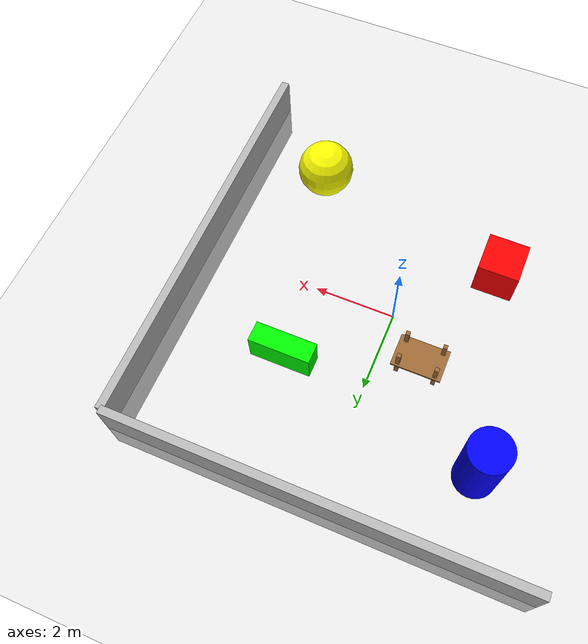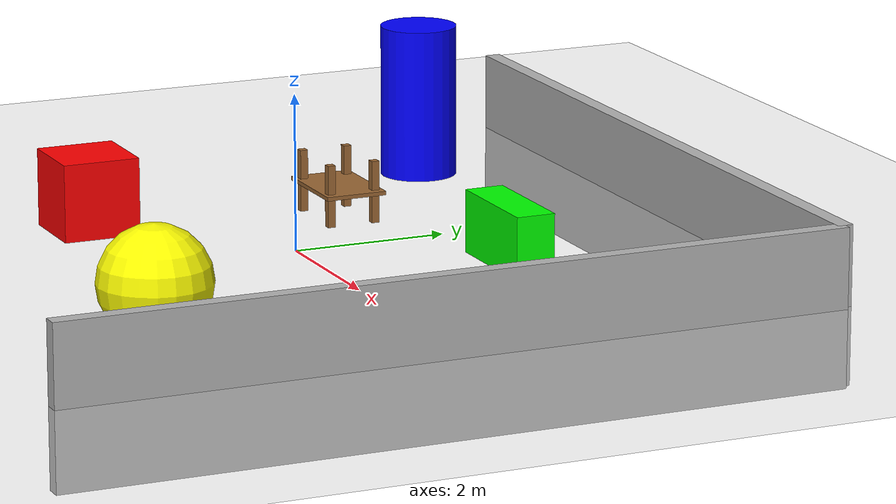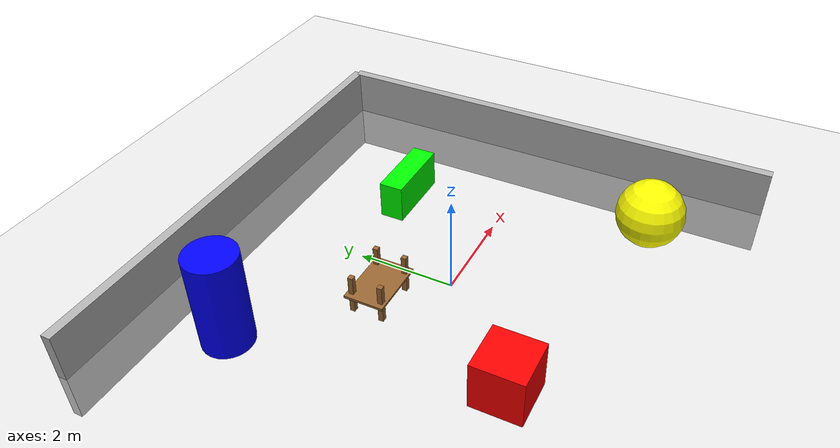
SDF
<?xml version="1.0" ?>
<sdf version="1.7">
  <world name="basic_world">
    <!-- Include the default Gazebo environment -->
    <include>
      <uri>model://ground_plane</uri>
    </include>

    <include>
      <uri>model://sun</uri>
    </include>

    <!-- Physics Engine Configuration -->
    <physics name="1ms" type="ode">
      <max_step_size>0.001</max_step_size>
      <real_time_factor>1.0</real_time_factor>
      <real_time_update_rate>1000.0</real_time_update_rate>
      <gravity>0 0 -9.8</gravity>
      <ode>
        <solver>
          <type>quick</type>
          <iters>10</iters>
          <sor>1.0</sor>
        </solver>
        <constraints>
          <cfm>0.0</cfm>
          <erp>0.2</erp>
          <contact_max_correcting_vel>100.0</contact_max_correcting_vel>
          <contact_surface_layer>0.001</contact_surface_layer>
        </constraints>
      </ode>
    </physics>

    <!-- Obstacles in the world -->

    <!-- Wall obstacles -->
    <model name="wall_1">
      <pose>0 5 0 0 0 0</pose>
      <static>true</static>
      <link name="link">
        <collision name="collision">
          <geometry>
            <box>
              <size>10 0.2 2</size>
            </box>
          </geometry>
        </collision>
        <visual name="visual">
          <geometry>
            <box>
              <size>10 0.2 2</size>
            </box>
          </geometry>
          <material>
            <ambient>0.5 0.5 0.5 1</ambient>
            <diffuse>0.7 0.7 0.7 1</diffuse>
            <specular>0.1 0.1 0.1 1</specular>
          </material>
        </visual>
        <inertial>
          <mass>1</mass>
          <inertia>
            <ixx>1</ixx>
            <ixy>0</ixy>
            <ixz>0</ixz>
            <iyy>1</iyy>
            <iyz>0</iyz>
            <izz>1</izz>
          </inertia>
        </inertial>
      </link>
    </model>

    <model name="wall_2">
      <pose>5 0 0 0 0 1.570796</pose>
      <static>true</static>
      <link name="link">
        <collision name="collision">
          <geometry>
            <box>
              <size>10 0.2 2</size>
            </box>
          </geometry>
        </collision>
        <visual name="visual">
          <geometry>
            <box>
              <size>10 0.2 2</size>
            </box>
          </geometry>
          <material>
            <ambient>0.5 0.5 0.5 1</ambient>
            <diffuse>0.7 0.7 0.7 1</diffuse>
            <specular>0.1 0.1 0.1 1</specular>
          </material>
        </visual>
        <inertial>
          <mass>1</mass>
          <inertia>
            <ixx>1</ixx>
            <ixy>0</ixy>
            <ixz>0</ixz>
            <iyy>1</iyy>
            <iyz>0</iyz>
            <izz>1</izz>
          </inertia>
        </inertial>
      </link>
    </model>

    <!-- Box obstacles -->
    <model name="box_1">
      <pose>-2 -2 0.5 0 0 0</pose>
      <link name="link">
        <collision name="collision">
          <geometry>
            <box>
              <size>1 1 1</size>
            </box>
          </geometry>
        </collision>
        <visual name="visual">
          <geometry>
            <box>
              <size>1 1 1</size>
            </box>
          </geometry>
          <material>
            <ambient>1 0 0 1</ambient>
            <diffuse>1 0 0 1</diffuse>
            <specular>0.1 0.1 0.1 1</specular>
          </material>
        </visual>
        <inertial>
          <mass>10</mass>
          <inertia>
            <ixx>0.1667</ixx>
            <ixy>0</ixy>
            <ixz>0</ixz>
            <iyy>0.1667</iyy>
            <iyz>0</iyz>
            <izz>0.1667</izz>
          </inertia>
        </inertial>
      </link>
    </model>

    <model name="box_2">
      <pose>2 2 0.5 0 0 0</pose>
      <link name="link">
        <collision name="collision">
          <geometry>
            <box>
              <size>1.5 0.5 0.8</size>
            </box>
          </geometry>
        </collision>
        <visual name="visual">
          <geometry>
            <box>
              <size>1.5 0.5 0.8</size>
            </box>
          </geometry>
          <material>
            <ambient>0 1 0 1</ambient>
            <diffuse>0 1 0 1</diffuse>
            <specular>0.1 0.1 0.1 1</specular>
          </material>
        </visual>
        <inertial>
          <mass>5</mass>
          <inertia>
            <ixx>0.1458</ixx>
            <ixy>0</ixy>
            <ixz>0</ixz>
            <iyy>0.3958</iyy>
            <iyz>0</iyz>
            <izz>0.4792</izz>
          </inertia>
        </inertial>
      </link>
    </model>

    <!-- Cylinder obstacle -->
    <model name="cylinder_1">
      <pose>-3 3 1 0 0 0</pose>
      <link name="link">
        <collision name="collision">
          <geometry>
            <cylinder>
              <radius>0.5</radius>
              <length>2</length>
            </cylinder>
          </geometry>
        </collision>
        <visual name="visual">
          <geometry>
            <cylinder>
              <radius>0.5</radius>
              <length>2</length>
            </cylinder>
          </geometry>
          <material>
            <ambient>0 0 1 1</ambient>
            <diffuse>0 0 1 1</diffuse>
            <specular>0.1 0.1 0.1 1</specular>
          </material>
        </visual>
        <inertial>
          <mass>8</mass>
          <inertia>
            <ixx>1.5</ixx>
            <ixy>0</ixy>
            <ixz>0</ixz>
            <iyy>1.5</iyy>
            <iyz>0</iyz>
            <izz>1</izz>
          </inertia>
        </inertial>
      </link>
    </model>

    <!-- Sphere obstacle -->
    <model name="sphere_1">
      <pose>3 -3 0.7 0 0 0</pose>
      <link name="link">
        <collision name="collision">
          <geometry>
            <sphere>
              <radius>0.7</radius>
            </sphere>
          </geometry>
        </collision>
        <visual name="visual">
          <geometry>
            <sphere>
              <radius>0.7</radius>
            </sphere>
          </geometry>
          <material>
            <ambient>1 1 0 1</ambient>
            <diffuse>1 1 0 1</diffuse>
            <specular>0.1 0.1 0.1 1</specular>
          </material>
        </visual>
        <inertial>
          <mass>4</mass>
          <inertia>
            <ixx>0.784</ixx>
            <ixy>0</ixy>
            <ixz>0</ixz>
            <iyy>0.784</iyy>
            <iyz>0</iyz>
            <izz>0.784</izz>
          </inertia>
        </inertial>
      </link>
    </model>

    <!-- Furniture-like obstacles -->
    <model name="table_1">
      <pose>-1 1 0.5 0 0 0</pose>
      <static>true</static>
      <link name="table_top">
        <collision name="collision">
          <geometry>
            <box>
              <size>1.2 0.8 0.05</size>
            </box>
          </geometry>
        </collision>
        <visual name="visual">
          <geometry>
            <box>
              <size>1.2 0.8 0.05</size>
            </box>
          </geometry>
          <material>
            <ambient>0.6 0.4 0.2 1</ambient>
            <diffuse>0.6 0.4 0.2 1</diffuse>
            <specular>0.1 0.1 0.1 1</specular>
          </material>
        </visual>
        <inertial>
          <mass>5</mass>
          <inertia>
            <ixx>0.3417</ixx>
            <ixy>0</ixy>
            <ixz>0</ixz>
            <iyy>0.5542</iyy>
            <iyz>0</iyz>
            <izz>0.8958</izz>
          </inertia>
        </inertial>
      </link>
      <link name="leg_1">
        <pose>-0.45 -0.3 0 0 0 0</pose>
        <collision name="collision">
          <geometry>
            <box>
              <size>0.1 0.1 0.8</size>
            </box>
          </geometry>
        </collision>
        <visual name="visual">
          <geometry>
            <box>
              <size>0.1 0.1 0.8</size>
            </box>
          </geometry>
          <material>
            <ambient>0.6 0.4 0.2 1</ambient>
            <diffuse>0.6 0.4 0.2 1</diffuse>
            <specular>0.1 0.1 0.1 1</specular>
          </material>
        </visual>
        <inertial>
          <mass>1</mass>
          <inertia>
            <ixx>0.0134</ixx>
            <ixy>0</ixy>
            <ixz>0</ixz>
            <iyy>0.0134</iyy>
            <iyz>0</iyz>
            <izz>0.0083</izz>
          </inertia>
        </inertial>
      </link>
      <link name="leg_2">
        <pose>0.45 -0.3 0 0 0 0</pose>
        <collision name="collision">
          <geometry>
            <box>
              <size>0.1 0.1 0.8</size>
            </box>
          </geometry>
        </collision>
        <visual name="visual">
          <geometry>
            <box>
              <size>0.1 0.1 0.8</size>
            </box>
          </geometry>
          <material>
            <ambient>0.6 0.4 0.2 1</ambient>
            <diffuse>0.6 0.4 0.2 1</diffuse>
            <specular>0.1 0.1 0.1 1</specular>
          </material>
        </visual>
        <inertial>
          <mass>1</mass>
          <inertia>
            <ixx>0.0134</ixx>
            <ixy>0</ixy>
            <ixz>0</ixz>
            <iyy>0.0134</iyy>
            <iyz>0</iyz>
            <izz>0.0083</izz>
          </inertia>
        </inertial>
      </link>
      <link name="leg_3">
        <pose>-0.45 0.3 0 0 0 0</pose>
        <collision name="collision">
          <geometry>
            <box>
              <size>0.1 0.1 0.8</size>
            </box>
          </geometry>
        </collision>
        <visual name="visual">
          <geometry>
            <box>
              <size>0.1 0.1 0.8</size>
            </box>
          </geometry>
          <material>
            <ambient>0.6 0.4 0.2 1</ambient>
            <diffuse>0.6 0.4 0.2 1</diffuse>
            <specular>0.1 0.1 0.1 1</specular>
          </material>
        </visual>
        <inertial>
          <mass>1</mass>
          <inertia>
            <ixx>0.0134</ixx>
            <ixy>0</ixy>
            <ixz>0</ixz>
            <iyy>0.0134</iyy>
            <iyz>0</iyz>
            <izz>0.0083</izz>
          </inertia>
        </inertial>
      </link>
      <link name="leg_4">
        <pose>0.45 0.3 0 0 0 0</pose>
        <collision name="collision">
          <geometry>
            <box>
              <size>0.1 0.1 0.8</size>
            </box>
          </geometry>
        </collision>
        <visual name="visual">
          <geometry>
            <box>
              <size>0.1 0.1 0.8</size>
            </box>
          </geometry>
          <material>
            <ambient>0.6 0.4 0.2 1</ambient>
            <diffuse>0.6 0.4 0.2 1</diffuse>
            <specular>0.1 0.1 0.1 1</specular>
          </material>
        </visual>
        <inertial>
          <mass>1</mass>
          <inertia>
            <ixx>0.0134</ixx>
            <ixy>0</ixy>
            <ixz>0</ixz>
            <iyy>0.0134</iyy>
            <iyz>0</iyz>
            <izz>0.0083</izz>
          </inertia>
        </inertial>
      </link>
      <joint name="joint_1" type="fixed">
        <parent>table_top</parent>
        <child>leg_1</child>
      </joint>
      <joint name="joint_2" type="fixed">
        <parent>table_top</parent>
        <child>leg_2</child>
      </joint>
      <joint name="joint_3" type="fixed">
        <parent>table_top</parent>
        <child>leg_3</child>
      </joint>
      <joint name="joint_4" type="fixed">
        <parent>table_top</parent>
        <child>leg_4</child>
      </joint>
    </model>

    <!-- Lighting -->
    <light name="spotlight_1" type="spot">
      <pose>0 0 5 0 0 0</pose>
      <diffuse>1 1 1 1</diffuse>
      <specular>0.5 0.5 0.5 1</specular>
      <attenuation>
        <range>10</range>
        <constant>0.9</constant>
        <linear>0.01</linear>
        <quadratic>0.001</quadratic>
      </attenuation>
      <direction>-0.5 0.1 -0.8</direction>
      <spot>
        <cutoff>20</cutoff>
        <exponent>80</exponent>
      </spot>
    </light>

    <!-- Environmental effects -->
    <scene>
      <ambient>0.4 0.4 0.4 1</ambient>
      <background>0.7 0.7 0.7 1</background>
      <shadows>true</shadows>
    </scene>

    <!-- Atmosphere -->
    <atmosphere type="adiabatic">
      <temperature>288.15</temperature>
      <pressure>101325</pressure>
    </atmosphere>

  </world>
</sdf>
